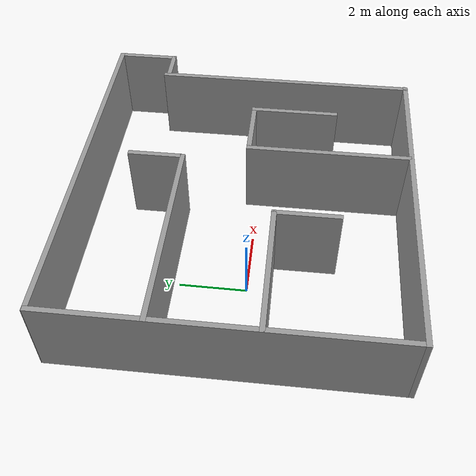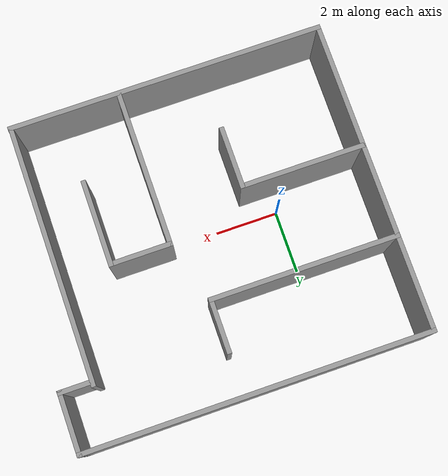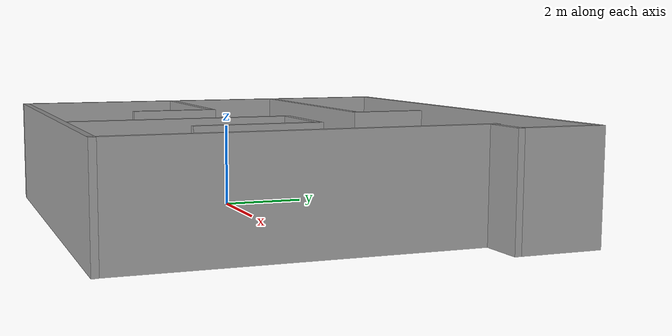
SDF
<?xml version='1.0'?>
<sdf version='1.7'>
  <model name='simple_maze'>
    <pose>2.54 0.298119 0 0 -0 0</pose>
    <link name='Wall_0'>
      <collision name='Wall_0_Collision'>
        <geometry>
          <box>
            <size>11 0.15 2.5</size>
          </box>
        </geometry>
        <pose>0 0 1.25 0 -0 0</pose>
      </collision>
      <visual name='Wall_0_Visual'>
        <pose>0 0 1.25 0 -0 0</pose>
        <geometry>
          <box>
            <size>11 0.15 2.5</size>
          </box>
        </geometry>
        <material>
          <script>
            <uri>file://media/materials/scripts/gazebo.material</uri>
            <name>Gazebo/Grey</name>
          </script>
          <ambient>1 1 1 1</ambient>
        </material>
        <meta>
          <layer>0</layer>
        </meta>
      </visual>
      <pose>0 4.9325 0 0 -0 0</pose>
    </link>
    <link name='Wall_17'>
      <collision name='Wall_17_Collision'>
        <geometry>
          <box>
            <size>2 0.15 2.5</size>
          </box>
        </geometry>
        <pose>0 0 1.25 0 -0 0</pose>
      </collision>
      <visual name='Wall_17_Visual'>
        <pose>0 0 1.25 0 -0 0</pose>
        <geometry>
          <box>
            <size>2 0.15 2.5</size>
          </box>
        </geometry>
        <material>
          <script>
            <uri>file://media/materials/scripts/gazebo.material</uri>
            <name>Gazebo/Grey</name>
          </script>
          <ambient>1 1 1 1</ambient>
        </material>
        <meta>
          <layer>0</layer>
        </meta>
      </visual>
      <pose>5.425 4.0075 0 0 -0 -1.5708</pose>
    </link>
    <link name='Wall_18'>
      <collision name='Wall_18_Collision'>
        <geometry>
          <box>
            <size>1 0.15 2.5</size>
          </box>
        </geometry>
        <pose>0 0 1.25 0 -0 0</pose>
      </collision>
      <visual name='Wall_18_Visual'>
        <pose>0 0 1.25 0 -0 0</pose>
        <geometry>
          <box>
            <size>1 0.15 2.5</size>
          </box>
        </geometry>
        <material>
          <script>
            <uri>file://media/materials/scripts/gazebo.material</uri>
            <name>Gazebo/Grey</name>
          </script>
          <ambient>1 1 1 1</ambient>
        </material>
        <meta>
          <layer>0</layer>
        </meta>
      </visual>
      <pose>5 3.0825 0 0 -0 3.14159</pose>
    </link>
    <link name='Wall_20'>
      <collision name='Wall_20_Collision'>
        <geometry>
          <box>
            <size>4 0.15 2.5</size>
          </box>
        </geometry>
        <pose>0 0 1.25 0 -0 0</pose>
      </collision>
      <visual name='Wall_20_Visual'>
        <pose>0 0 1.25 0 -0 0</pose>
        <geometry>
          <box>
            <size>4 0.15 2.5</size>
          </box>
        </geometry>
        <material>
          <script>
            <uri>file://media/materials/scripts/gazebo.material</uri>
            <name>Gazebo/Grey</name>
          </script>
          <ambient>1 1 1 1</ambient>
        </material>
        <meta>
          <layer>0</layer>
        </meta>
      </visual>
      <pose>-3.49922 -0.970149 0 0 -0 0</pose>
    </link>
    <link name='Wall_21'>
      <collision name='Wall_21_Collision'>
        <geometry>
          <box>
            <size>2 0.15 2.5</size>
          </box>
        </geometry>
        <pose>0 0 1.25 0 -0 0</pose>
      </collision>
      <visual name='Wall_21_Visual'>
        <pose>0 0 1.25 0 -0 0</pose>
        <geometry>
          <box>
            <size>2 0.15 2.5</size>
          </box>
        </geometry>
        <material>
          <script>
            <uri>file://media/materials/scripts/gazebo.material</uri>
            <name>Gazebo/Grey</name>
          </script>
          <ambient>1 1 1 1</ambient>
        </material>
        <meta>
          <layer>0</layer>
        </meta>
      </visual>
      <pose>-1.57422 -1.89515 0 0 -0 -1.5708</pose>
    </link>
    <link name='Wall_23'>
      <collision name='Wall_23_Collision'>
        <geometry>
          <box>
            <size>5 0.15 2.5</size>
          </box>
        </geometry>
        <pose>0 0 1.25 0 -0 0</pose>
      </collision>
      <visual name='Wall_23_Visual'>
        <pose>0 0 1.25 0 -0 0</pose>
        <geometry>
          <box>
            <size>5 0.15 2.5</size>
          </box>
        </geometry>
        <material>
          <script>
            <uri>file://media/materials/scripts/gazebo.material</uri>
            <name>Gazebo/Grey</name>
          </script>
          <ambient>1 1 1 1</ambient>
        </material>
        <meta>
          <layer>0</layer>
        </meta>
      </visual>
      <pose>1.02286 -2.43386 0 0 -0 1.5708</pose>
    </link>
    <link name='Wall_24'>
      <collision name='Wall_24_Collision'>
        <geometry>
          <box>
            <size>2 0.15 2.5</size>
          </box>
        </geometry>
        <pose>0 0 1.25 0 -0 0</pose>
      </collision>
      <visual name='Wall_24_Visual'>
        <pose>0 0 1.25 0 -0 0</pose>
        <geometry>
          <box>
            <size>2 0.15 2.5</size>
          </box>
        </geometry>
        <material>
          <script>
            <uri>file://media/materials/scripts/gazebo.material</uri>
            <name>Gazebo/Grey</name>
          </script>
          <ambient>1 1 1 1</ambient>
        </material>
        <meta>
          <layer>0</layer>
        </meta>
      </visual>
      <pose>1.94786 -0.008859 0 0 -0 0</pose>
    </link>
    <link name='Wall_26'>
      <collision name='Wall_26_Collision'>
        <geometry>
          <box>
            <size>1.75 0.15 2.5</size>
          </box>
        </geometry>
        <pose>0 0 1.25 0 -0 0</pose>
      </collision>
      <visual name='Wall_26_Visual'>
        <pose>0 0 1.25 0 -0 0</pose>
        <geometry>
          <box>
            <size>1.75 0.15 2.5</size>
          </box>
        </geometry>
        <material>
          <script>
            <uri>file://media/materials/scripts/gazebo.material</uri>
            <name>Gazebo/Grey</name>
          </script>
          <ambient>1 1 1 1</ambient>
        </material>
        <meta>
          <layer>0</layer>
        </meta>
      </visual>
      <pose>0.425905 2.74962 0 0 -0 -1.5708</pose>
    </link>
    <link name='Wall_27'>
      <collision name='Wall_27_Collision'>
        <geometry>
          <box>
            <size>6 0.15 2.5</size>
          </box>
        </geometry>
        <pose>0 0 1.25 0 -0 0</pose>
      </collision>
      <visual name='Wall_27_Visual'>
        <pose>0 0 1.25 0 -0 0</pose>
        <geometry>
          <box>
            <size>6 0.15 2.5</size>
          </box>
        </geometry>
        <material>
          <script>
            <uri>file://media/materials/scripts/gazebo.material</uri>
            <name>Gazebo/Grey</name>
          </script>
          <ambient>1 1 1 1</ambient>
        </material>
        <meta>
          <layer>0</layer>
        </meta>
      </visual>
      <pose>-2.4991 1.94962 0 0 -0 3.14159</pose>
    </link>
    <link name='Wall_29'>
      <collision name='Wall_29_Collision'>
        <geometry>
          <box>
            <size>2.75 0.15 2.5</size>
          </box>
        </geometry>
        <pose>0 0 1.25 0 -0 0</pose>
      </collision>
      <visual name='Wall_29_Visual'>
        <pose>0 0 1.25 0 -0 0</pose>
        <geometry>
          <box>
            <size>2.75 0.15 2.5</size>
          </box>
        </geometry>
        <material>
          <script>
            <uri>file://media/materials/scripts/gazebo.material</uri>
            <name>Gazebo/Grey</name>
          </script>
          <ambient>1 1 1 1</ambient>
        </material>
        <meta>
          <layer>0</layer>
        </meta>
      </visual>
      <pose>2.87286 -1.30886 0 0 -0 -1.5708</pose>
    </link>
    <link name='Wall_4'>
      <collision name='Wall_4_Collision'>
        <geometry>
          <box>
            <size>10.03 0.15 2.5</size>
          </box>
        </geometry>
        <pose>0 0 1.25 0 -0 0</pose>
      </collision>
      <visual name='Wall_4_Visual'>
        <pose>0 0 1.25 0 -0 0</pose>
        <geometry>
          <box>
            <size>10.03 0.15 2.5</size>
          </box>
        </geometry>
        <material>
          <script>
            <uri>file://media/materials/scripts/gazebo.material</uri>
            <name>Gazebo/Grey</name>
          </script>
          <ambient>1 1 1 1</ambient>
        </material>
        <meta>
          <layer>0</layer>
        </meta>
      </visual>
      <pose>-0.485 -4.9325 0 0 -0 3.14159</pose>
    </link>
    <link name='Wall_5'>
      <collision name='Wall_5_Collision'>
        <geometry>
          <box>
            <size>10 0.15 2.5</size>
          </box>
        </geometry>
        <pose>0 0 1.25 0 -0 0</pose>
      </collision>
      <visual name='Wall_5_Visual'>
        <pose>0 0 1.25 0 -0 0</pose>
        <geometry>
          <box>
            <size>10 0.15 2.5</size>
          </box>
        </geometry>
        <material>
          <script>
            <uri>file://media/materials/scripts/gazebo.material</uri>
            <name>Gazebo/Grey</name>
          </script>
          <ambient>1 1 1 1</ambient>
        </material>
        <meta>
          <layer>0</layer>
        </meta>
      </visual>
      <pose>-5.425 -0.0075 0 0 -0 1.5708</pose>
    </link>
    <link name='Wall_7'>
      <collision name='Wall_7_Collision'>
        <geometry>
          <box>
            <size>8.25 0.15 2.5</size>
          </box>
        </geometry>
        <pose>0 0 1.25 0 -0 0</pose>
      </collision>
      <visual name='Wall_7_Visual'>
        <pose>0 0 1.25 0 -0 0</pose>
        <geometry>
          <box>
            <size>8.25 0.15 2.5</size>
          </box>
        </geometry>
        <material>
          <script>
            <uri>file://media/materials/scripts/gazebo.material</uri>
            <name>Gazebo/Grey</name>
          </script>
          <ambient>1 1 1 1</ambient>
        </material>
        <meta>
          <layer>0</layer>
        </meta>
      </visual>
      <pose>4.44 -0.8825 0 0 -0 1.5708</pose>
    </link>
    <static>1</static>
  </model>
</sdf>
